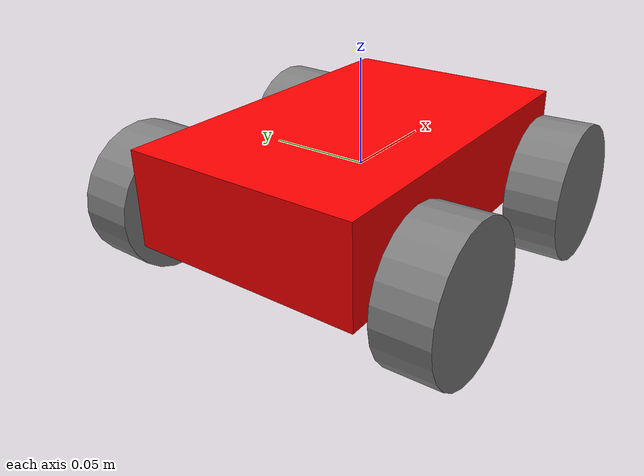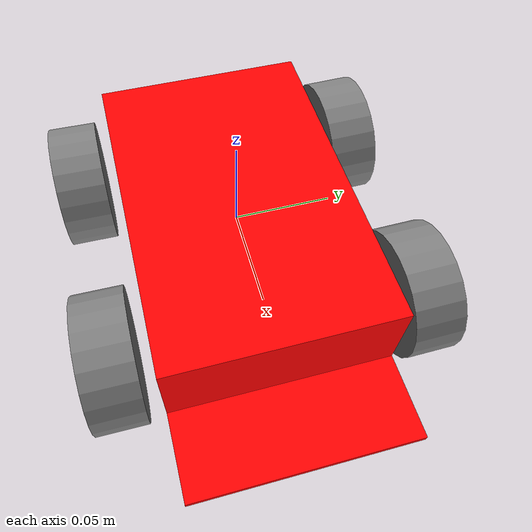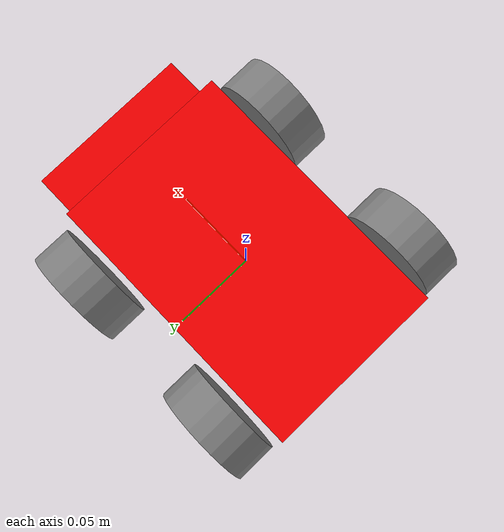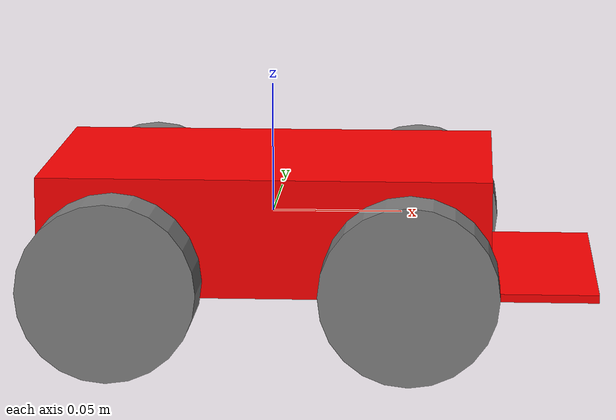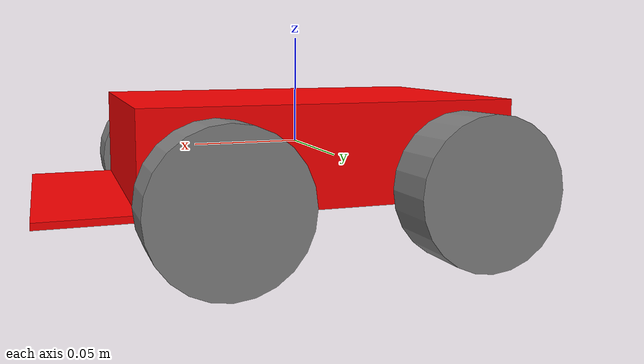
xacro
<?xml version="1.0"?>
<robot xmlns:xacro="http://www.ros.org/wiki/xacro" name="minicar">

    <link name="dummy"></link>
    <joint name="dummy_joint" type="fixed">
        <parent link="dummy"/>
        <child link="chassis"/>
    </joint>

    <xacro:property name="const" value="0.083"/>
    <xacro:property name="massV" value="4"/>
    <xacro:property name="width" value="0.17"/>
    <xacro:property name="heigth" value="0.045"/>
    <xacro:property name="depth" value="0.11"/>

    <xacro:property name="massWheel" value="0.2"/>
    <xacro:property name="radiusWheel" value="0.033"/>
    <xacro:property name="heightWheel" value="0.025"/>

    <!-- chassis -->
    <link name="chassis">
        <inertial>
            <origin xyz="0.0 0.0 0.0" rpy="0.0 0.0 0.0"/>
            <mass value="${massV}"/>
            <inertia ixx="${const * massV * (heigth * heigth + depth * depth)}" ixy="0.0" ixz="0.0"
                    iyy="${const * massV * (heigth * heigth + width * width)}" iyz="0.0"
                    izz="${const * massV * (width * width + depth * depth)}"/>
        </inertial>
        <visual name="">
            <origin xyz="0.0 0.0 0.0" rpy="0.0 0.0 0.0"/>
            <geometry>
                <box size="0.17 0.11 0.045"/>
            </geometry>
            <material name="">
                <color rgba="1.0 0.0 0.0 1.0"/>
                <texture filename=""/>
            </material>
        </visual>
        <collision>
            <origin xyz="0.0 0.0 0.0" rpy="0.0 0.0 0.0"/>
            <geometry>
                <box size="0.22 0.11 0.045"/>
            </geometry>
        </collision>
    </link>

    <link name="chassis_front_link">
        <visual name="">
            <origin xyz="0.0 0.0 0.0" rpy="0.0 0.0 0.0"/>
            <geometry>
                <box size="0.05 0.11 0.003"/>
            </geometry>
            <material name="">
                <color rgba="1.0 0.0 0.0 1.0"/>
                <texture filename=""/>
            </material>
        </visual>
    </link>

    <joint name="chassis_front_joint" type="fixed">
        <parent link="chassis"/>
        <child link="chassis_front_link"/>
        <origin xyz="0.1 0.0 -0.021" rpy="0.0 0.0 0.0"/>
    </joint>

    <!-- Rear wheels macro-->
    <xacro:macro name="wheel" params="name x y z roll">
        <link name="wheel_${name}_link">
            <inertial>
                <origin xyz="0.0 0.0 0.0" rpy="0.0 0.0 0.0"/>
                <mass value="${massWheel}"/>
                <inertia ixx="${const*massWheel*(3*radiusWheel*radiusWheel + heightWheel*heightWheel)}" ixy="0.0" ixz="0.0"
                        iyy="${const*massWheel*(3*radiusWheel*radiusWheel + heightWheel*heightWheel)}" iyz="0.0"
                        izz="${0.5*massWheel*radiusWheel*radiusWheel}"/>
            </inertial>
            <visual name="">
                <origin xyz="0.0 0.0 0.0" rpy="${roll} 0.0 0.0"/>
                <geometry>
                    <cylinder radius="${radiusWheel}" length="${heightWheel}"/>
                </geometry>
                <material name="gray">
                    <color rgba="0.5 0.5 0.5 1.0"/>
                    <texture filename=""/>
                </material>
            </visual>
            <collision>
                <origin xyz="0.0 0.0 0.0" rpy="0.0 0.0 0.0"/>
                <geometry>
                    <cylinder radius="${radiusWheel}" length="${heightWheel}"/>
                </geometry>
                <surface>
                <friction>
                    <ode>
                        <mu>100.01</mu>
                        <mu2>200s.01</mu2>
                        <fdir1>0 0 1</fdir1>
                        <slip1>0</slip1>
                        <slip2>0</slip2>
                    </ode>
                </friction>
                <bounce>
                    <restitution_coefficient>0.0</restitution_coefficient>
                    <threshold>100000.0</threshold>
                </bounce>
                <contact>
                    <ode>
                        <soft_cfm>0.0</soft_cfm>
                        <soft_erp>0.2</soft_erp>
                        <kp>100000.0</kp>
                        <kd>1.0</kd>
                        <max_vel>100.0</max_vel>
                        <min_depth>0.001</min_depth>
                    </ode>
                </contact>
            </surface>
            </collision>
        </link>
        <joint name="wheel_${name}_joint" type="continuous">
            <parent link="chassis"/>
            <child link="wheel_${name}_link"/>
            <axis xyz="0 0 -1"/>
            <origin xyz="${x} ${y} ${z}" rpy="1.5707 0 0"/>
            <joint_properties damping="1.0" friction="1.0" />
        </joint>

        <transmission name="wheel_${name}_trans">
            <type>transmission_interface/SimpleTransmission</type>
            <actuator name="wheel_${name}_motor">
                <mechanicalReduction>1</mechanicalReduction>
            </actuator>
            <joint name="wheel_${name}_joint">
                <hardwareInterface>hardware_interface/VelocityJointInterface</hardwareInterface>
            </joint>
        </transmission>

    </xacro:macro>

    <!-- Front steer wheels macro-->
    <xacro:macro name="steer_wheel" params="name x y z roll">
        <link name="wheel_${name}_link">
            <inertial>
                <origin xyz="0.0 0.0 0.0" rpy="0.0 0.0 0.0"/>
                <mass value="${massWheel}"/>
                <inertia ixx="${const*massWheel*(3*radiusWheel*radiusWheel + heightWheel*heightWheel)}" ixy="0.0" ixz="0.0"
                        iyy="${const*massWheel*(3*radiusWheel*radiusWheel + heightWheel*heightWheel)}" iyz="0.0"
                        izz="${0.5*massWheel*radiusWheel*radiusWheel}"/>
            </inertial>
            <visual name="">
                <origin xyz="0.0 0.0 0.0" rpy="${roll} 0.0 0.0"/>
                <geometry>
                    <cylinder radius="${radiusWheel}" length="${heightWheel}"/>
                </geometry>
                <material name="gray">
                    <color rgba="0.5 0.5 0.5 1.0"/>
                    <texture filename=""/>
                </material>
            </visual>
            <collision>
                <origin xyz="0.0 0.0 0.0" rpy="0.0 0.0 0.0"/>
                <geometry>
                    <cylinder radius="${radiusWheel}" length="${heightWheel}"/>
                </geometry>
            </collision>

            <surface>
                <friction>
                    <ode>
                        <mu>200</mu>
                        <mu2>400</mu2>
                        <fdir1>0 0 1</fdir1>
                        <slip1>0</slip1>
                        <slip2>0</slip2>
                    </ode>
                </friction>
                <bounce>
                    <restitution_coefficient>0.0</restitution_coefficient>
                    <threshold>100000.0</threshold>
                </bounce>
                <contact>
                    <ode>
                        <soft_cfm>0.0</soft_cfm>
                        <soft_erp>0.2</soft_erp>
                        <kp>10000000.0</kp>
                        <kd>1.0</kd>
                        <max_vel>0.3</max_vel>
                        <min_depth>0.05</min_depth>
                    </ode>
                </contact>
            </surface>
        </link>

        <link name="steer_${name}_link">
            <visual>
                <origin xyz="0.0 0.0 0.0" rpy="0.0 0.0 0.0"/>
                <geometry>
                    <box size="0.001 0.001 0.001"/>
                </geometry>
            </visual>
            <collision>
                <origin xyz="0.0 0.0 0.0" rpy="0.0 0.0 0.0"/>
                <geometry>
                    <box size="0.001 0.001 0.001"/>
                </geometry>
            </collision>
            <inertial>
                <origin xyz="0.0 0.0 0.0" rpy="0.0 0.0 0.0"/>
                <mass value="0.01"/>
               <inertia ixx="0.01" ixy="0.01" ixz="0.0" iyy="0.01" iyz="0.0" izz="0.01"/>
            </inertial>
        </link>

        <joint name="steer_${name}_joint" type="revolute">
            <parent link="chassis"/>
            <child link="steer_${name}_link"/>
            <axis xyz="0 0 1"/>
            <limit lower="-0.6" upper="0.6" velocity="1" effort="10.0"/>
            <origin xyz="${x} ${y} ${z}" rpy="0 0 0"/>
        </joint>

        <joint name="wheel_${name}_joint" type="continuous">
            <parent link="steer_${name}_link"/>
            <child link="wheel_${name}_link"/>
            <axis xyz="0 0 -1"/>
            <origin xyz="0 0 0" rpy="1.5707 0 0"/>
            <joint_properties damping="1.0" friction="1.0" />
        </joint>

        <transmission name="steer_${name}_trans">
            <type>transmission_interface/SimpleTransmission</type>
            <actuator name="steer_${name}_motor">
                <mechanicalReduction>1</mechanicalReduction>
            </actuator>
            <joint name="steer_${name}_joint">
                <hardwareInterface>hardware_interface/PositionJointInterface</hardwareInterface>
            </joint>
        </transmission>
    </xacro:macro>

    <!-- Wheels generation-->
    <!-- Rear wheels -->
    <xacro:wheel name="rear_right" x="-0.055" y="-0.0755" z="-0.014" roll="-0.02"/>
    <xacro:wheel name="rear_left" x="-0.055" y="0.0755" z="-0.014" roll="0.02"/>
    <!-- Front steer wheels -->
    <xacro:steer_wheel name="front_right" x="0.055" y="-0.0755" z="-0.014" roll="-0.02"/>
    <xacro:steer_wheel name="front_left" x="0.055" y="0.0755" z="-0.014" roll="0.02"/>

    <gazebo>
        <plugin name="p3d_base_controller" filename="libgazebo_ros_p3d.so">
            <alwaysOn>true</alwaysOn>
            <updateRate>10.0</updateRate>
            <bodyName>chassis</bodyName>
            <topicName>localization/state</topicName>
            <gaussianNoise>0.05</gaussianNoise>
            <frameName>world</frameName>
            <xyzOffsets>0 0 0</xyzOffsets>
            <rpyOffsets>0 0 0</rpyOffsets>
        </plugin>
    </gazebo>
    <gazebo>
        <plugin name="gazebo_ros_control" filename="libgazebo_ros_control.so">
            <robotNamespace>/</robotNamespace>
        </plugin>
    </gazebo>
</robot>
